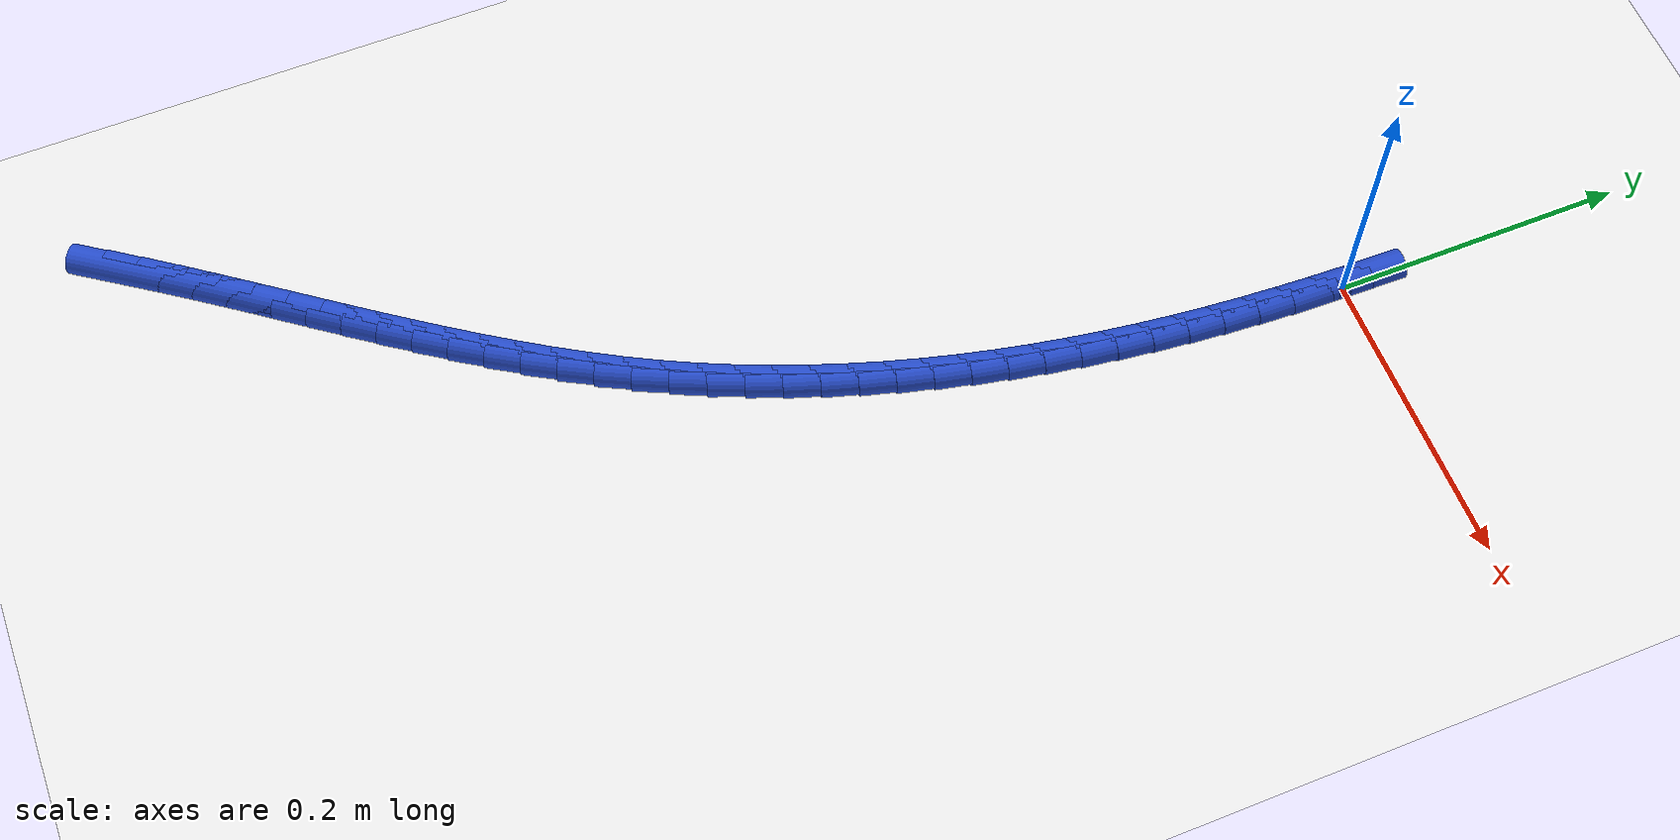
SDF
<sdf version="1.6">
 <world name="default">
  <model name="ground_plane">
   <static>1</static>
   <link name="link">
    <collision name="collision">
     <geometry><plane><normal>0 0 1</normal><size>100 100</size></plane></geometry>
     <surface><friction><ode><mu>100</mu><mu2>50</mu2></ode></friction></surface>
    </collision>
    <visual name="visual">
     <cast_shadows>0</cast_shadows>
     <geometry><plane><normal>0 0 1</normal><size>100 100</size></plane></geometry>
     <material>
      <script><uri>file://media/materials/scripts/gazebo.material</uri><name>Gazebo/WhiteGlow</name></script>
     </material>
    </visual>
   </link>
  </model>
  <model name="line">
   <link name="link_0">
    <pose>1.5720931501039814e-18 5.551115123125783e-17 0.01 0 1.57 1.5464983713554736</pose>
    <collision name="collision">
     <geometry><cylinder><radius>0.01</radius><length>0.08</length></cylinder></geometry>
    </collision>
    <visual name="visual">
     <material>
      <script><name>Gazebo/Blue</name><uri>file://media/materials/scripts/gazebo.material</uri></script>
     </material>
     <geometry><cylinder><radius>0.01</radius><length>0.08</length></cylinder></geometry>
    </visual>
   </link>
   <link name="link_246">
    <pose>-0.3020089965908396 -0.7307009561396269 0.01 0 1.57 0.9601556983339842</pose>
    <collision name="collision">
     <geometry><cylinder><radius>0.01</radius><length>0.08</length></cylinder></geometry>
    </collision>
    <visual name="visual">
     <material>
      <script><name>Gazebo/Blue</name><uri>file://media/materials/scripts/gazebo.material</uri></script>
     </material>
     <geometry><cylinder><radius>0.01</radius><length>0.08</length></cylinder></geometry>
    </visual>
   </link>
   <link name="link_247">
    <pose>-0.28861860206071827 -0.7115683459876291 0.01 0 1.57 0.9480058338008621</pose>
    <collision name="collision">
     <geometry><cylinder><radius>0.01</radius><length>0.08</length></cylinder></geometry>
    </collision>
    <visual name="visual">
     <material>
      <script><name>Gazebo/Blue</name><uri>file://media/materials/scripts/gazebo.material</uri></script>
     </material>
     <geometry><cylinder><radius>0.01</radius><length>0.08</length></cylinder></geometry>
    </visual>
   </link>
   <link name="link_248">
    <pose>-0.2749269169480378 -0.6925026023820424 0.01 0 1.57 0.9387468621810606</pose>
    <collision name="collision">
     <geometry><cylinder><radius>0.01</radius><length>0.08</length></cylinder></geometry>
    </collision>
    <visual name="visual">
     <material>
      <script><name>Gazebo/Blue</name><uri>file://media/materials/scripts/gazebo.material</uri></script>
     </material>
     <geometry><cylinder><radius>0.01</radius><length>0.08</length></cylinder></geometry>
    </visual>
   </link>
   <link name="link_249">
    <pose>-0.26099433242256126 -0.673475733766851 0.01 0 1.57 0.9327339280858199</pose>
    <collision name="collision">
     <geometry><cylinder><radius>0.01</radius><length>0.08</length></cylinder></geometry>
    </collision>
    <visual name="visual">
     <material>
      <script><name>Gazebo/Blue</name><uri>file://media/materials/scripts/gazebo.material</uri></script>
     </material>
     <geometry><cylinder><radius>0.01</radius><length>0.08</length></cylinder></geometry>
    </visual>
   </link>
   <link name="link_250">
    <pose>-0.246891284422014 -0.6544570491112434 0.01 0 1.57 0.9299159290435165</pose>
    <collision name="collision">
     <geometry><cylinder><radius>0.01</radius><length>0.08</length></cylinder></geometry>
    </collision>
    <visual name="visual">
     <material>
      <script><name>Gazebo/Blue</name><uri>file://media/materials/scripts/gazebo.material</uri></script>
     </material>
     <geometry><cylinder><radius>0.01</radius><length>0.08</length></cylinder></geometry>
    </visual>
   </link>
   <link name="link_251">
    <pose>-0.23268820888412114 -0.6354158573844086 0.01 0 1.57 0.9302555224058611</pose>
    <collision name="collision">
     <geometry><cylinder><radius>0.01</radius><length>0.08</length></cylinder></geometry>
    </collision>
    <visual name="visual">
     <material>
      <script><name>Gazebo/Blue</name><uri>file://media/materials/scripts/gazebo.material</uri></script>
     </material>
     <geometry><cylinder><radius>0.01</radius><length>0.08</length></cylinder></geometry>
    </visual>
   </link>
   <link name="link_252">
    <pose>-0.21845554174660747 -0.6163214675555355 0.01 0 1.57 0.9337294891455609</pose>
    <collision name="collision">
     <geometry><cylinder><radius>0.01</radius><length>0.08</length></cylinder></geometry>
    </collision>
    <visual name="visual">
     <material>
      <script><name>Gazebo/Blue</name><uri>file://media/materials/scripts/gazebo.material</uri></script>
     </material>
     <geometry><cylinder><radius>0.01</radius><length>0.08</length></cylinder></geometry>
    </visual>
   </link>
   <link name="link_253">
    <pose>-0.20426371894719922 -0.5971431885938142 0.01 0 1.57 0.9403282907950457</pose>
    <collision name="collision">
     <geometry><cylinder><radius>0.01</radius><length>0.08</length></cylinder></geometry>
    </collision>
    <visual name="visual">
     <material>
      <script><name>Gazebo/Blue</name><uri>file://media/materials/scripts/gazebo.material</uri></script>
     </material>
     <geometry><cylinder><radius>0.01</radius><length>0.08</length></cylinder></geometry>
    </visual>
   </link>
   <link name="link_254">
    <pose>-0.19018317642362095 -0.577850329468433 0.01 0 1.57 0.9500548576966131</pose>
    <collision name="collision">
     <geometry><cylinder><radius>0.01</radius><length>0.08</length></cylinder></geometry>
    </collision>
    <visual name="visual">
     <material>
      <script><name>Gazebo/Blue</name><uri>file://media/materials/scripts/gazebo.material</uri></script>
     </material>
     <geometry><cylinder><radius>0.01</radius><length>0.08</length></cylinder></geometry>
    </visual>
   </link>
   <link name="link_255">
    <pose>-0.17628435011359803 -0.558412199148581 0.01 0 1.57 0.9629225950345148</pose>
    <collision name="collision">
     <geometry><cylinder><radius>0.01</radius><length>0.08</length></cylinder></geometry>
    </collision>
    <visual name="visual">
     <material>
      <script><name>Gazebo/Blue</name><uri>file://media/materials/scripts/gazebo.material</uri></script>
     </material>
     <geometry><cylinder><radius>0.01</radius><length>0.08</length></cylinder></geometry>
    </visual>
   </link>
   <link name="link_256">
    <pose>-0.16263767595485557 -0.5387981066034472 0.01 0 1.57 0.9789525502493965</pose>
    <collision name="collision">
     <geometry><cylinder><radius>0.01</radius><length>0.08</length></cylinder></geometry>
    </collision>
    <visual name="visual">
     <material>
      <script><name>Gazebo/Blue</name><uri>file://media/materials/scripts/gazebo.material</uri></script>
     </material>
     <geometry><cylinder><radius>0.01</radius><length>0.08</length></cylinder></geometry>
    </visual>
   </link>
   <link name="link_257">
    <pose>-0.14931358988511886 -0.5189773608022207 0.01 0 1.57 0.9981696556669326</pose>
    <collision name="collision">
     <geometry><cylinder><radius>0.01</radius><length>0.08</length></cylinder></geometry>
    </collision>
    <visual name="visual">
     <material>
      <script><name>Gazebo/Blue</name><uri>file://media/materials/scripts/gazebo.material</uri></script>
     </material>
     <geometry><cylinder><radius>0.01</radius><length>0.08</length></cylinder></geometry>
    </visual>
   </link>
   <link name="link_258">
    <pose>-0.13638252784211313 -0.49891927071409076 0.01 0 1.57 1.020597949573488</pose>
    <collision name="collision">
     <geometry><cylinder><radius>0.01</radius><length>0.08</length></cylinder></geometry>
    </collision>
    <visual name="visual">
     <material>
      <script><name>Gazebo/Blue</name><uri>file://media/materials/scripts/gazebo.material</uri></script>
     </material>
     <geometry><cylinder><radius>0.01</radius><length>0.08</length></cylinder></geometry>
    </visual>
   </link>
   <link name="link_259">
    <pose>-0.12391492576356349 -0.47859314530824587 0.01 0 1.57 1.0462546958990342</pose>
    <collision name="collision">
     <geometry><cylinder><radius>0.01</radius><length>0.08</length></cylinder></geometry>
    </collision>
    <visual name="visual">
     <material>
      <script><name>Gazebo/Blue</name><uri>file://media/materials/scripts/gazebo.material</uri></script>
     </material>
     <geometry><cylinder><radius>0.01</radius><length>0.08</length></cylinder></geometry>
    </visual>
   </link>
   <link name="link_260">
    <pose>-0.11198121958719526 -0.4579682935538756 0.01 0 1.57 1.0751433774971686</pose>
    <collision name="collision">
     <geometry><cylinder><radius>0.01</radius><length>0.08</length></cylinder></geometry>
    </collision>
    <visual name="visual">
     <material>
      <script><name>Gazebo/Blue</name><uri>file://media/materials/scripts/gazebo.material</uri></script>
     </material>
     <geometry><cylinder><radius>0.01</radius><length>0.08</length></cylinder></geometry>
    </visual>
   </link>
   <link name="link_261">
    <pose>-0.10065184525073329 -0.4370140244201682 0.01 0 1.57 1.1068061463771275</pose>
    <collision name="collision">
     <geometry><cylinder><radius>0.01</radius><length>0.08</length></cylinder></geometry>
    </collision>
    <visual name="visual">
     <material>
      <script><name>Gazebo/Blue</name><uri>file://media/materials/scripts/gazebo.material</uri></script>
     </material>
     <geometry><cylinder><radius>0.01</radius><length>0.08</length></cylinder></geometry>
    </visual>
   </link>
   <link name="link_262">
    <pose>-0.08998877673595336 -0.4157061391986782 0.01 0 1.57 1.1384704775989687</pose>
    <collision name="collision">
     <geometry><cylinder><radius>0.01</radius><length>0.08</length></cylinder></geometry>
    </collision>
    <visual name="visual">
     <material>
      <script><name>Gazebo/Blue</name><uri>file://media/materials/scripts/gazebo.material</uri></script>
     </material>
     <geometry><cylinder><radius>0.01</radius><length>0.08</length></cylinder></geometry>
    </visual>
   </link>
   <link name="link_263">
    <pose>-0.08000093103768152 -0.39406114644355666 0.01 0 1.57 1.1690978646537635</pose>
    <collision name="collision">
     <geometry><cylinder><radius>0.01</radius><length>0.08</length></cylinder></geometry>
    </collision>
    <visual name="visual">
     <material>
      <script><name>Gazebo/Blue</name><uri>file://media/materials/scripts/gazebo.material</uri></script>
     </material>
     <geometry><cylinder><radius>0.01</radius><length>0.08</length></cylinder></geometry>
    </visual>
   </link>
   <link name="link_264">
    <pose>-0.07067670684498253 -0.3721112971042309 0.01 0 1.57 1.1987252863702025</pose>
    <collision name="collision">
     <geometry><cylinder><radius>0.01</radius><length>0.08</length></cylinder></geometry>
    </collision>
    <visual name="visual">
     <material>
      <script><name>Gazebo/Blue</name><uri>file://media/materials/scripts/gazebo.material</uri></script>
     </material>
     <geometry><cylinder><radius>0.01</radius><length>0.08</length></cylinder></geometry>
    </visual>
   </link>
   <link name="link_265">
    <pose>-0.06200445853221877 -0.3498888761299907 0.01 0 1.57 1.22739646867274</pose>
    <collision name="collision">
     <geometry><cylinder><radius>0.01</radius><length>0.08</length></cylinder></geometry>
    </collision>
    <visual name="visual">
     <material>
      <script><name>Gazebo/Blue</name><uri>file://media/materials/scripts/gazebo.material</uri></script>
     </material>
     <geometry><cylinder><radius>0.01</radius><length>0.08</length></cylinder></geometry>
    </visual>
   </link>
   <link name="link_266">
    <pose>-0.05397254047375256 -0.3274261684701254 0.01 0 1.57 1.2551586299738784</pose>
    <collision name="collision">
     <geometry><cylinder><radius>0.01</radius><length>0.08</length></cylinder></geometry>
    </collision>
    <visual name="visual">
     <material>
      <script><name>Gazebo/Blue</name><uri>file://media/materials/scripts/gazebo.material</uri></script>
     </material>
     <geometry><cylinder><radius>0.01</radius><length>0.08</length></cylinder></geometry>
    </visual>
   </link>
   <link name="link_267">
    <pose>-0.046569307043946184 -0.30475545907392443 0.01 0 1.57 1.2820616803117442</pose>
    <collision name="collision">
     <geometry><cylinder><radius>0.01</radius><length>0.08</length></cylinder></geometry>
    </collision>
    <visual name="visual">
     <material>
      <script><name>Gazebo/Blue</name><uri>file://media/materials/scripts/gazebo.material</uri></script>
     </material>
     <geometry><cylinder><radius>0.01</radius><length>0.08</length></cylinder></geometry>
    </visual>
   </link>
   <link name="link_268">
    <pose>-0.03978311261716203 -0.2819090328906773 0.01 0 1.57 1.3081575672996129</pose>
    <collision name="collision">
     <geometry><cylinder><radius>0.01</radius><length>0.08</length></cylinder></geometry>
    </collision>
    <visual name="visual">
     <material>
      <script><name>Gazebo/Blue</name><uri>file://media/materials/scripts/gazebo.material</uri></script>
     </material>
     <geometry><cylinder><radius>0.01</radius><length>0.08</length></cylinder></geometry>
    </visual>
   </link>
   <link name="link_269">
    <pose>-0.03360231156776241 -0.25891917486967375 0.01 0 1.57 1.333499760492571</pose>
    <collision name="collision">
     <geometry><cylinder><radius>0.01</radius><length>0.08</length></cylinder></geometry>
    </collision>
    <visual name="visual">
     <material>
      <script><name>Gazebo/Blue</name><uri>file://media/materials/scripts/gazebo.material</uri></script>
     </material>
     <geometry><cylinder><radius>0.01</radius><length>0.08</length></cylinder></geometry>
    </visual>
   </link>
   <link name="link_270">
    <pose>-0.02801525827010946 -0.23581816996020216 0.01 0 1.57 1.3581391083231111</pose>
    <collision name="collision">
     <geometry><cylinder><radius>0.01</radius><length>0.08</length></cylinder></geometry>
    </collision>
    <visual name="visual">
     <material>
      <script><name>Gazebo/Blue</name><uri>file://media/materials/scripts/gazebo.material</uri></script>
     </material>
     <geometry><cylinder><radius>0.01</radius><length>0.08</length></cylinder></geometry>
    </visual>
   </link>
   <link name="link_271">
    <pose>-0.023010100408545505 -0.21263776785801922 0.01 0 1.57 1.381984023601335</pose>
    <collision name="collision">
     <geometry><cylinder><radius>0.01</radius><length>0.08</length></cylinder></geometry>
    </collision>
    <visual name="visual">
     <material>
      <script><name>Gazebo/Blue</name><uri>file://media/materials/scripts/gazebo.material</uri></script>
     </material>
     <geometry><cylinder><radius>0.01</radius><length>0.08</length></cylinder></geometry>
    </visual>
   </link>
   <link name="link_272">
    <pose>-0.01856806051448978 -0.18939178457939257 0.01 0 1.57 1.4048334450724342</pose>
    <collision name="collision">
     <geometry><cylinder><radius>0.01</radius><length>0.08</length></cylinder></geometry>
    </collision>
    <visual name="visual">
     <material>
      <script><name>Gazebo/Blue</name><uri>file://media/materials/scripts/gazebo.material</uri></script>
     </material>
     <geometry><cylinder><radius>0.01</radius><length>0.08</length></cylinder></geometry>
    </visual>
   </link>
   <link name="link_273">
    <pose>-0.014661959206971066 -0.1660722781800699 0.01 0 1.57 1.4266108724572701</pose>
    <collision name="collision">
     <geometry><cylinder><radius>0.01</radius><length>0.08</length></cylinder></geometry>
    </collision>
    <visual name="visual">
     <material>
      <script><name>Gazebo/Blue</name><uri>file://media/materials/scripts/gazebo.material</uri></script>
     </material>
     <geometry><cylinder><radius>0.01</radius><length>0.08</length></cylinder></geometry>
    </visual>
   </link>
   <link name="link_274">
    <pose>-0.011264111599353935 -0.1426699976361784 0.01 0 1.57 1.4472590296999415</pose>
    <collision name="collision">
     <geometry><cylinder><radius>0.01</radius><length>0.08</length></cylinder></geometry>
    </collision>
    <visual name="visual">
     <material>
      <script><name>Gazebo/Blue</name><uri>file://media/materials/scripts/gazebo.material</uri></script>
     </material>
     <geometry><cylinder><radius>0.01</radius><length>0.08</length></cylinder></geometry>
    </visual>
   </link>
   <link name="link_275">
    <pose>-0.008346832805002946 -0.11917569192384518 0.01 0 1.57 1.466730563845868</pose>
    <collision name="collision">
     <geometry><cylinder><radius>0.01</radius><length>0.08</length></cylinder></geometry>
    </collision>
    <visual name="visual">
     <material>
      <script><name>Gazebo/Blue</name><uri>file://media/materials/scripts/gazebo.material</uri></script>
     </material>
     <geometry><cylinder><radius>0.01</radius><length>0.08</length></cylinder></geometry>
    </visual>
   </link>
   <link name="link_276">
    <pose>-0.0058824379372826715 -0.09558011001919726 0.01 0 1.57 1.4849877104632752</pose>
    <collision name="collision">
     <geometry><cylinder><radius>0.01</radius><length>0.08</length></cylinder></geometry>
    </collision>
    <visual name="visual">
     <material>
      <script><name>Gazebo/Blue</name><uri>file://media/materials/scripts/gazebo.material</uri></script>
     </material>
     <geometry><cylinder><radius>0.01</radius><length>0.08</length></cylinder></geometry>
    </visual>
   </link>
   <link name="link_277">
    <pose>-0.0038432421095576748 -0.07187400089836177 0.01 0 1.57 1.5020017851356415</pose>
    <collision name="collision">
     <geometry><cylinder><radius>0.01</radius><length>0.08</length></cylinder></geometry>
    </collision>
    <visual name="visual">
     <material>
      <script><name>Gazebo/Blue</name><uri>file://media/materials/scripts/gazebo.material</uri></script>
     </material>
     <geometry><cylinder><radius>0.01</radius><length>0.08</length></cylinder></geometry>
    </visual>
   </link>
   <link name="link_278">
    <pose>-0.0022015604351925235 -0.04804811353746576 0.01 0 1.57 1.517752546360373</pose>
    <collision name="collision">
     <geometry><cylinder><radius>0.01</radius><length>0.08</length></cylinder></geometry>
    </collision>
    <visual name="visual">
     <material>
      <script><name>Gazebo/Blue</name><uri>file://media/materials/scripts/gazebo.material</uri></script>
     </material>
     <geometry><cylinder><radius>0.01</radius><length>0.08</length></cylinder></geometry>
    </visual>
   </link>
   <link name="link_279">
    <pose>-0.0009297080275517476 -0.024093196912635624 0.01 0 1.57 1.5322274732107113</pose>
    <collision name="collision">
     <geometry><cylinder><radius>0.01</radius><length>0.08</length></cylinder></geometry>
    </collision>
    <visual name="visual">
     <material>
      <script><name>Gazebo/Blue</name><uri>file://media/materials/scripts/gazebo.material</uri></script>
     </material>
     <geometry><cylinder><radius>0.01</radius><length>0.08</length></cylinder></geometry>
    </visual>
   </link>
  </model>
 </world>
</sdf>
